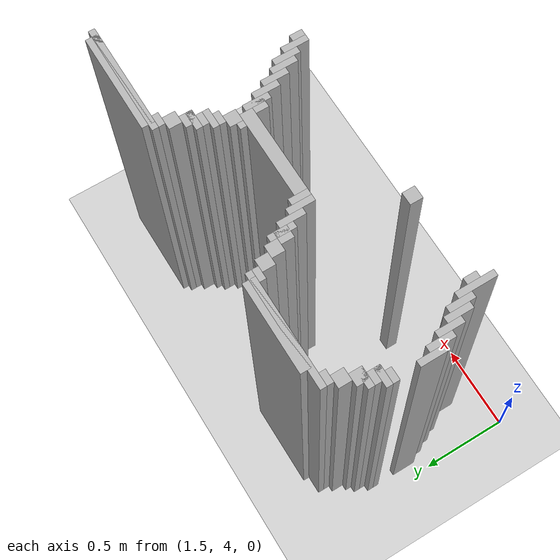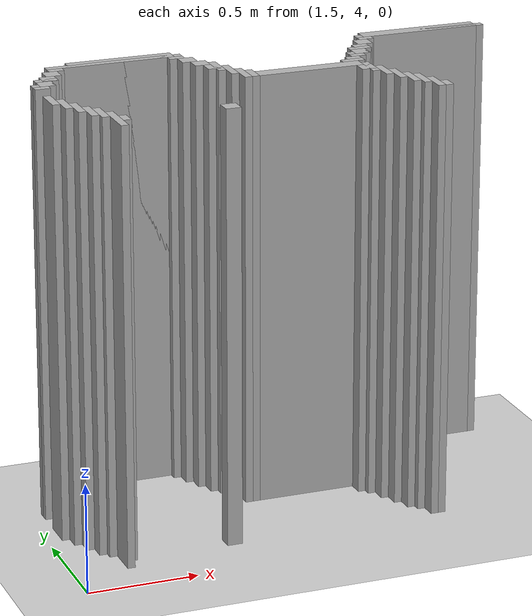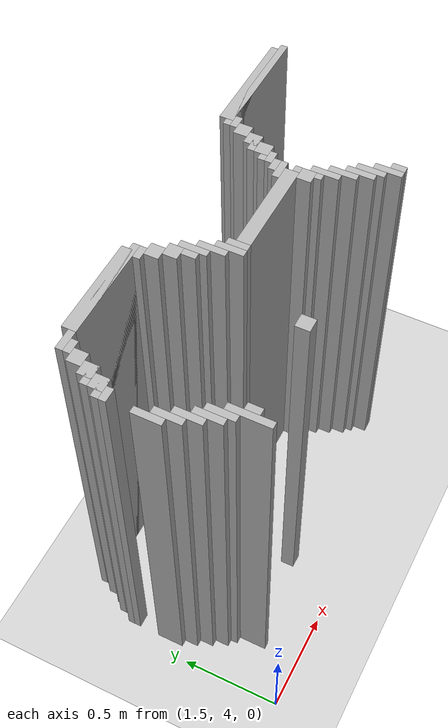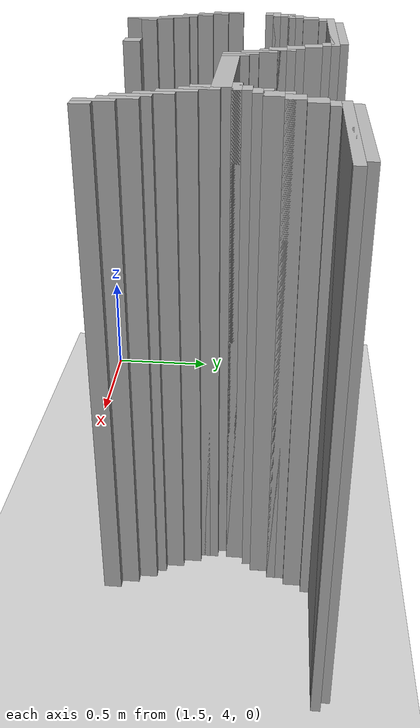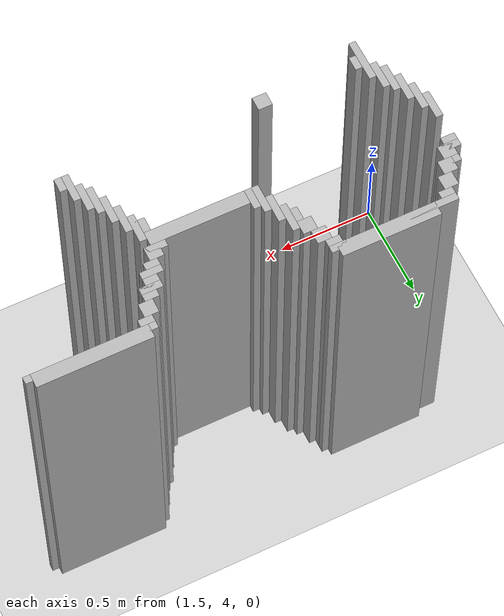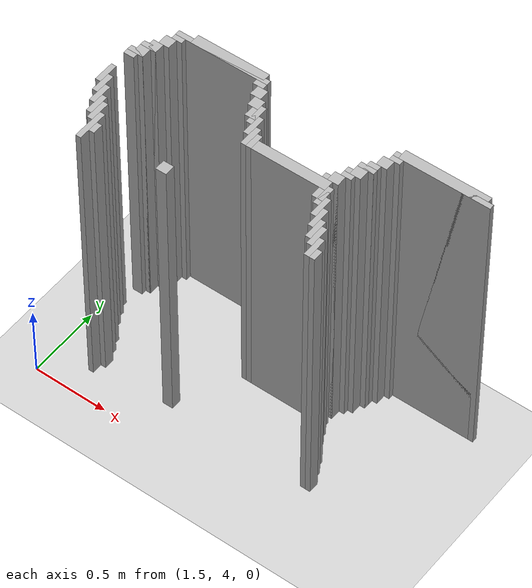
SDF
<sdf version="1.6">
 <world name="slam_world">
  <model name="ground_plane">
   <static>true</static>
   <link name="link">
    <collision name="collision">
     <geometry><plane><normal>0 0 1</normal><size>100 100</size></plane></geometry>
    </collision>
    <visual name="visual">
     <geometry><plane><normal>0 0 1</normal><size>100 100</size></plane></geometry>
     <material>
      <ambient>0.8 0.8 0.8 1</ambient>
      <diffuse>0.8 0.8 0.8 1</diffuse>
      <specular>0.8 0.8 0.8 1</specular>
     </material>
    </visual>
   </link>
  </model>
  <model name="wall_4001">
   <static>true</static>
   <pose>2.053364269141531 5.1160092807424595 1.0 0 0 0</pose>
   <link name="link">
    <collision name="collision">
     <geometry><box><size>0.4872389791183295 0.06960556844547564 2.0</size></box></geometry>
    </collision>
    <visual name="visual">
     <geometry><box><size>0.4872389791183295 0.06960556844547564 2.0</size></box></geometry>
     <material><ambient>0.5 0.5 0.5 1</ambient><diffuse>0.7 0.7 0.7 1</diffuse></material>
    </visual>
   </link>
  </model>
  <model name="wall_4002">
   <static>true</static>
   <pose>3.480278422273782 5.1160092807424595 1.0 0 0 0</pose>
   <link name="link">
    <collision name="collision">
     <geometry><box><size>0.5568445475638051 0.06960556844547564 2.0</size></box></geometry>
    </collision>
    <visual name="visual">
     <geometry><box><size>0.5568445475638051 0.06960556844547564 2.0</size></box></geometry>
     <material><ambient>0.5 0.5 0.5 1</ambient><diffuse>0.7 0.7 0.7 1</diffuse></material>
    </visual>
   </link>
  </model>
  <model name="wall_4011">
   <static>true</static>
   <pose>2.0185614849187936 5.09860788863109 1.0 0 0 0</pose>
   <link name="link">
    <collision name="collision">
     <geometry><box><size>0.6264501160092807 0.03480278422273782 2.0</size></box></geometry>
    </collision>
    <visual name="visual">
     <geometry><box><size>0.6264501160092807 0.03480278422273782 2.0</size></box></geometry>
     <material><ambient>0.5 0.5 0.5 1</ambient><diffuse>0.7 0.7 0.7 1</diffuse></material>
    </visual>
   </link>
  </model>
  <model name="wall_4012">
   <static>true</static>
   <pose>3.480278422273782 5.09860788863109 1.0 0 0 0</pose>
   <link name="link">
    <collision name="collision">
     <geometry><box><size>0.6264501160092807 0.03480278422273782 2.0</size></box></geometry>
    </collision>
    <visual name="visual">
     <geometry><box><size>0.6264501160092807 0.03480278422273782 2.0</size></box></geometry>
     <material><ambient>0.5 0.5 0.5 1</ambient><diffuse>0.7 0.7 0.7 1</diffuse></material>
    </visual>
   </link>
  </model>
  <model name="wall_4024">
   <static>true</static>
   <pose>1.740139211136891 5.0638051044083525 1.0 0 0 0</pose>
   <link name="link">
    <collision name="collision">
     <geometry><box><size>0.06960556844547564 0.03480278422273782 2.0</size></box></geometry>
    </collision>
    <visual name="visual">
     <geometry><box><size>0.06960556844547564 0.03480278422273782 2.0</size></box></geometry>
     <material><ambient>0.5 0.5 0.5 1</ambient><diffuse>0.7 0.7 0.7 1</diffuse></material>
    </visual>
   </link>
  </model>
  <model name="wall_4025">
   <static>true</static>
   <pose>2.296983758700696 5.0638051044083525 1.0 0 0 0</pose>
   <link name="link">
    <collision name="collision">
     <geometry><box><size>0.06960556844547564 0.03480278422273782 2.0</size></box></geometry>
    </collision>
    <visual name="visual">
     <geometry><box><size>0.06960556844547564 0.03480278422273782 2.0</size></box></geometry>
     <material><ambient>0.5 0.5 0.5 1</ambient><diffuse>0.7 0.7 0.7 1</diffuse></material>
    </visual>
   </link>
  </model>
  <model name="wall_4026">
   <static>true</static>
   <pose>3.201856148491879 5.0638051044083525 1.0 0 0 0</pose>
   <link name="link">
    <collision name="collision">
     <geometry><box><size>0.06960556844547564 0.03480278422273782 2.0</size></box></geometry>
    </collision>
    <visual name="visual">
     <geometry><box><size>0.06960556844547564 0.03480278422273782 2.0</size></box></geometry>
     <material><ambient>0.5 0.5 0.5 1</ambient><diffuse>0.7 0.7 0.7 1</diffuse></material>
    </visual>
   </link>
  </model>
  <model name="wall_4039">
   <static>true</static>
   <pose>1.705336426914153 5.0116009280742455 1.0 0 0 0</pose>
   <link name="link">
    <collision name="collision">
     <geometry><box><size>0.06960556844547564 0.06960556844547564 2.0</size></box></geometry>
    </collision>
    <visual name="visual">
     <geometry><box><size>0.06960556844547564 0.06960556844547564 2.0</size></box></geometry>
     <material><ambient>0.5 0.5 0.5 1</ambient><diffuse>0.7 0.7 0.7 1</diffuse></material>
    </visual>
   </link>
  </model>
  <model name="wall_4040">
   <static>true</static>
   <pose>2.331786542923434 5.0116009280742455 1.0 0 0 0</pose>
   <link name="link">
    <collision name="collision">
     <geometry><box><size>0.06960556844547564 0.06960556844547564 2.0</size></box></geometry>
    </collision>
    <visual name="visual">
     <geometry><box><size>0.06960556844547564 0.06960556844547564 2.0</size></box></geometry>
     <material><ambient>0.5 0.5 0.5 1</ambient><diffuse>0.7 0.7 0.7 1</diffuse></material>
    </visual>
   </link>
  </model>
  <model name="wall_4041">
   <static>true</static>
   <pose>3.167053364269141 5.0116009280742455 1.0 0 0 0</pose>
   <link name="link">
    <collision name="collision">
     <geometry><box><size>0.06960556844547564 0.06960556844547564 2.0</size></box></geometry>
    </collision>
    <visual name="visual">
     <geometry><box><size>0.06960556844547564 0.06960556844547564 2.0</size></box></geometry>
     <material><ambient>0.5 0.5 0.5 1</ambient><diffuse>0.7 0.7 0.7 1</diffuse></material>
    </visual>
   </link>
  </model>
  <model name="wall_4054">
   <static>true</static>
   <pose>1.6705336426914152 4.94199535962877 1.0 0 0 0</pose>
   <link name="link">
    <collision name="collision">
     <geometry><box><size>0.06960556844547564 0.06960556844547564 2.0</size></box></geometry>
    </collision>
    <visual name="visual">
     <geometry><box><size>0.06960556844547564 0.06960556844547564 2.0</size></box></geometry>
     <material><ambient>0.5 0.5 0.5 1</ambient><diffuse>0.7 0.7 0.7 1</diffuse></material>
    </visual>
   </link>
  </model>
  <model name="wall_4055">
   <static>true</static>
   <pose>2.3665893271461718 4.94199535962877 1.0 0 0 0</pose>
   <link name="link">
    <collision name="collision">
     <geometry><box><size>0.06960556844547564 0.06960556844547564 2.0</size></box></geometry>
    </collision>
    <visual name="visual">
     <geometry><box><size>0.06960556844547564 0.06960556844547564 2.0</size></box></geometry>
     <material><ambient>0.5 0.5 0.5 1</ambient><diffuse>0.7 0.7 0.7 1</diffuse></material>
    </visual>
   </link>
  </model>
  <model name="wall_4056">
   <static>true</static>
   <pose>3.1322505800464038 4.94199535962877 1.0 0 0 0</pose>
   <link name="link">
    <collision name="collision">
     <geometry><box><size>0.06960556844547564 0.06960556844547564 2.0</size></box></geometry>
    </collision>
    <visual name="visual">
     <geometry><box><size>0.06960556844547564 0.06960556844547564 2.0</size></box></geometry>
     <material><ambient>0.5 0.5 0.5 1</ambient><diffuse>0.7 0.7 0.7 1</diffuse></material>
    </visual>
   </link>
  </model>
  <model name="wall_4069">
   <static>true</static>
   <pose>1.6531322505800463 4.924593967517401 1.0 0 0 0</pose>
   <link name="link">
    <collision name="collision">
     <geometry><box><size>0.10440835266821345 0.03480278422273782 2.0</size></box></geometry>
    </collision>
    <visual name="visual">
     <geometry><box><size>0.10440835266821345 0.03480278422273782 2.0</size></box></geometry>
     <material><ambient>0.5 0.5 0.5 1</ambient><diffuse>0.7 0.7 0.7 1</diffuse></material>
    </visual>
   </link>
  </model>
  <model name="wall_4070">
   <static>true</static>
   <pose>2.4187935034802783 4.872389791183294 1.0 0 0 0</pose>
   <link name="link">
    <collision name="collision">
     <geometry><box><size>0.03480278422273782 0.13921113689095127 2.0</size></box></geometry>
    </collision>
    <visual name="visual">
     <geometry><box><size>0.03480278422273782 0.13921113689095127 2.0</size></box></geometry>
     <material><ambient>0.5 0.5 0.5 1</ambient><diffuse>0.7 0.7 0.7 1</diffuse></material>
    </visual>
   </link>
  </model>
  <model name="wall_4071">
   <static>true</static>
   <pose>3.1148491879350346 4.924593967517401 1.0 0 0 0</pose>
   <link name="link">
    <collision name="collision">
     <geometry><box><size>0.10440835266821345 0.03480278422273782 2.0</size></box></geometry>
    </collision>
    <visual name="visual">
     <geometry><box><size>0.10440835266821345 0.03480278422273782 2.0</size></box></geometry>
     <material><ambient>0.5 0.5 0.5 1</ambient><diffuse>0.7 0.7 0.7 1</diffuse></material>
    </visual>
   </link>
  </model>
  <model name="wall_4084">
   <static>true</static>
   <pose>1.6357308584686774 4.872389791183294 1.0 0 0 0</pose>
   <link name="link">
    <collision name="collision">
     <geometry><box><size>0.06960556844547564 0.06960556844547564 2.0</size></box></geometry>
    </collision>
    <visual name="visual">
     <geometry><box><size>0.06960556844547564 0.06960556844547564 2.0</size></box></geometry>
     <material><ambient>0.5 0.5 0.5 1</ambient><diffuse>0.7 0.7 0.7 1</diffuse></material>
    </visual>
   </link>
  </model>
  <model name="wall_4085">
   <static>true</static>
   <pose>2.4013921113689096 4.872389791183294 1.0 0 0 0</pose>
   <link name="link">
    <collision name="collision">
     <geometry><box><size>0.06960556844547564 0.06960556844547564 2.0</size></box></geometry>
    </collision>
    <visual name="visual">
     <geometry><box><size>0.06960556844547564 0.06960556844547564 2.0</size></box></geometry>
     <material><ambient>0.5 0.5 0.5 1</ambient><diffuse>0.7 0.7 0.7 1</diffuse></material>
    </visual>
   </link>
  </model>
  <model name="wall_4086">
   <static>true</static>
   <pose>3.097447795823666 4.872389791183294 1.0 0 0 0</pose>
   <link name="link">
    <collision name="collision">
     <geometry><box><size>0.06960556844547564 0.06960556844547564 2.0</size></box></geometry>
    </collision>
    <visual name="visual">
     <geometry><box><size>0.06960556844547564 0.06960556844547564 2.0</size></box></geometry>
     <material><ambient>0.5 0.5 0.5 1</ambient><diffuse>0.7 0.7 0.7 1</diffuse></material>
    </visual>
   </link>
  </model>
  <model name="wall_4097">
   <static>true</static>
   <pose>1.6183294663573085 4.854988399071925 1.0 0 0 0</pose>
   <link name="link">
    <collision name="collision">
     <geometry><box><size>0.10440835266821345 0.03480278422273782 2.0</size></box></geometry>
    </collision>
    <visual name="visual">
     <geometry><box><size>0.10440835266821345 0.03480278422273782 2.0</size></box></geometry>
     <material><ambient>0.5 0.5 0.5 1</ambient><diffuse>0.7 0.7 0.7 1</diffuse></material>
    </visual>
   </link>
  </model>
  <model name="wall_4098">
   <static>true</static>
   <pose>2.453596287703016 4.802784222737819 1.0 0 0 0</pose>
   <link name="link">
    <collision name="collision">
     <geometry><box><size>0.03480278422273782 0.13921113689095127 2.0</size></box></geometry>
    </collision>
    <visual name="visual">
     <geometry><box><size>0.03480278422273782 0.13921113689095127 2.0</size></box></geometry>
     <material><ambient>0.5 0.5 0.5 1</ambient><diffuse>0.7 0.7 0.7 1</diffuse></material>
    </visual>
   </link>
  </model>
  <model name="wall_4099">
   <static>true</static>
   <pose>3.0800464037122968 4.854988399071925 1.0 0 0 0</pose>
   <link name="link">
    <collision name="collision">
     <geometry><box><size>0.10440835266821345 0.03480278422273782 2.0</size></box></geometry>
    </collision>
    <visual name="visual">
     <geometry><box><size>0.10440835266821345 0.03480278422273782 2.0</size></box></geometry>
     <material><ambient>0.5 0.5 0.5 1</ambient><diffuse>0.7 0.7 0.7 1</diffuse></material>
    </visual>
   </link>
  </model>
  <model name="wall_4111">
   <static>true</static>
   <pose>1.6009280742459395 4.820185614849188 1.0 0 0 0</pose>
   <link name="link">
    <collision name="collision">
     <geometry><box><size>0.06960556844547564 0.03480278422273782 2.0</size></box></geometry>
    </collision>
    <visual name="visual">
     <geometry><box><size>0.06960556844547564 0.03480278422273782 2.0</size></box></geometry>
     <material><ambient>0.5 0.5 0.5 1</ambient><diffuse>0.7 0.7 0.7 1</diffuse></material>
    </visual>
   </link>
  </model>
  <model name="wall_4112">
   <static>true</static>
   <pose>3.062645011600928 4.820185614849188 1.0 0 0 0</pose>
   <link name="link">
    <collision name="collision">
     <geometry><box><size>0.06960556844547564 0.03480278422273782 2.0</size></box></geometry>
    </collision>
    <visual name="visual">
     <geometry><box><size>0.06960556844547564 0.03480278422273782 2.0</size></box></geometry>
     <material><ambient>0.5 0.5 0.5 1</ambient><diffuse>0.7 0.7 0.7 1</diffuse></material>
    </visual>
   </link>
  </model>
  <model name="wall_4121">
   <static>true</static>
   <pose>2.488399071925754 4.7331786542923435 1.0 0 0 0</pose>
   <link name="link">
    <collision name="collision">
     <geometry><box><size>0.03480278422273782 0.13921113689095127 2.0</size></box></geometry>
    </collision>
    <visual name="visual">
     <geometry><box><size>0.03480278422273782 0.13921113689095127 2.0</size></box></geometry>
     <material><ambient>0.5 0.5 0.5 1</ambient><diffuse>0.7 0.7 0.7 1</diffuse></material>
    </visual>
   </link>
  </model>
  <model name="wall_4122">
   <static>true</static>
   <pose>3.02784222737819 4.767981438515081 1.0 0 0 0</pose>
   <link name="link">
    <collision name="collision">
     <geometry><box><size>0.06960556844547564 0.06960556844547564 2.0</size></box></geometry>
    </collision>
    <visual name="visual">
     <geometry><box><size>0.06960556844547564 0.06960556844547564 2.0</size></box></geometry>
     <material><ambient>0.5 0.5 0.5 1</ambient><diffuse>0.7 0.7 0.7 1</diffuse></material>
    </visual>
   </link>
  </model>
  <model name="wall_4135">
   <static>true</static>
   <pose>2.523201856148492 4.715777262180974 1.0 0 0 0</pose>
   <link name="link">
    <collision name="collision">
     <geometry><box><size>0.03480278422273782 0.10440835266821345 2.0</size></box></geometry>
    </collision>
    <visual name="visual">
     <geometry><box><size>0.03480278422273782 0.10440835266821345 2.0</size></box></geometry>
     <material><ambient>0.5 0.5 0.5 1</ambient><diffuse>0.7 0.7 0.7 1</diffuse></material>
    </visual>
   </link>
  </model>
  <model name="wall_4136">
   <static>true</static>
   <pose>3.010440835266821 4.750580046403712 1.0 0 0 0</pose>
   <link name="link">
    <collision name="collision">
     <geometry><box><size>0.10440835266821345 0.03480278422273782 2.0</size></box></geometry>
    </collision>
    <visual name="visual">
     <geometry><box><size>0.10440835266821345 0.03480278422273782 2.0</size></box></geometry>
     <material><ambient>0.5 0.5 0.5 1</ambient><diffuse>0.7 0.7 0.7 1</diffuse></material>
    </visual>
   </link>
  </model>
  <model name="wall_4149">
   <static>true</static>
   <pose>2.784222737819025 4.698375870069605 1.0 0 0 0</pose>
   <link name="link">
    <collision name="collision">
     <geometry><box><size>0.4872389791183295 0.06960556844547564 2.0</size></box></geometry>
    </collision>
    <visual name="visual">
     <geometry><box><size>0.4872389791183295 0.06960556844547564 2.0</size></box></geometry>
     <material><ambient>0.5 0.5 0.5 1</ambient><diffuse>0.7 0.7 0.7 1</diffuse></material>
    </visual>
   </link>
  </model>
  <model name="wall_4161">
   <static>true</static>
   <pose>1.5835266821345706 4.6287703016241295 1.0 0 0 0</pose>
   <link name="link">
    <collision name="collision">
     <geometry><box><size>0.03480278422273782 0.13921113689095127 2.0</size></box></geometry>
    </collision>
    <visual name="visual">
     <geometry><box><size>0.03480278422273782 0.13921113689095127 2.0</size></box></geometry>
     <material><ambient>0.5 0.5 0.5 1</ambient><diffuse>0.7 0.7 0.7 1</diffuse></material>
    </visual>
   </link>
  </model>
  <model name="wall_4162">
   <static>true</static>
   <pose>3.045243619489559 4.6287703016241295 1.0 0 0 0</pose>
   <link name="link">
    <collision name="collision">
     <geometry><box><size>0.03480278422273782 0.13921113689095127 2.0</size></box></geometry>
    </collision>
    <visual name="visual">
     <geometry><box><size>0.03480278422273782 0.13921113689095127 2.0</size></box></geometry>
     <material><ambient>0.5 0.5 0.5 1</ambient><diffuse>0.7 0.7 0.7 1</diffuse></material>
    </visual>
   </link>
  </model>
  <model name="wall_4176">
   <static>true</static>
   <pose>3.02784222737819 4.6287703016241295 1.0 0 0 0</pose>
   <link name="link">
    <collision name="collision">
     <geometry><box><size>0.06960556844547564 0.06960556844547564 2.0</size></box></geometry>
    </collision>
    <visual name="visual">
     <geometry><box><size>0.06960556844547564 0.06960556844547564 2.0</size></box></geometry>
     <material><ambient>0.5 0.5 0.5 1</ambient><diffuse>0.7 0.7 0.7 1</diffuse></material>
    </visual>
   </link>
  </model>
  <model name="wall_4190">
   <static>true</static>
   <pose>1.6183294663573085 4.559164733178654 1.0 0 0 0</pose>
   <link name="link">
    <collision name="collision">
     <geometry><box><size>0.03480278422273782 0.13921113689095127 2.0</size></box></geometry>
    </collision>
    <visual name="visual">
     <geometry><box><size>0.03480278422273782 0.13921113689095127 2.0</size></box></geometry>
     <material><ambient>0.5 0.5 0.5 1</ambient><diffuse>0.7 0.7 0.7 1</diffuse></material>
    </visual>
   </link>
  </model>
  <model name="wall_4191">
   <static>true</static>
   <pose>3.0800464037122968 4.559164733178654 1.0 0 0 0</pose>
   <link name="link">
    <collision name="collision">
     <geometry><box><size>0.03480278422273782 0.13921113689095127 2.0</size></box></geometry>
    </collision>
    <visual name="visual">
     <geometry><box><size>0.03480278422273782 0.13921113689095127 2.0</size></box></geometry>
     <material><ambient>0.5 0.5 0.5 1</ambient><diffuse>0.7 0.7 0.7 1</diffuse></material>
    </visual>
   </link>
  </model>
  <model name="wall_4212">
   <static>true</static>
   <pose>1.6531322505800463 4.489559164733178 1.0 0 0 0</pose>
   <link name="link">
    <collision name="collision">
     <geometry><box><size>0.03480278422273782 0.13921113689095127 2.0</size></box></geometry>
    </collision>
    <visual name="visual">
     <geometry><box><size>0.03480278422273782 0.13921113689095127 2.0</size></box></geometry>
     <material><ambient>0.5 0.5 0.5 1</ambient><diffuse>0.7 0.7 0.7 1</diffuse></material>
    </visual>
   </link>
  </model>
  <model name="wall_4213">
   <static>true</static>
   <pose>3.1148491879350346 4.489559164733178 1.0 0 0 0</pose>
   <link name="link">
    <collision name="collision">
     <geometry><box><size>0.03480278422273782 0.13921113689095127 2.0</size></box></geometry>
    </collision>
    <visual name="visual">
     <geometry><box><size>0.03480278422273782 0.13921113689095127 2.0</size></box></geometry>
     <material><ambient>0.5 0.5 0.5 1</ambient><diffuse>0.7 0.7 0.7 1</diffuse></material>
    </visual>
   </link>
  </model>
  <model name="wall_4227">
   <static>true</static>
   <pose>1.6879350348027842 4.419953596287703 1.0 0 0 0</pose>
   <link name="link">
    <collision name="collision">
     <geometry><box><size>0.03480278422273782 0.13921113689095127 2.0</size></box></geometry>
    </collision>
    <visual name="visual">
     <geometry><box><size>0.03480278422273782 0.13921113689095127 2.0</size></box></geometry>
     <material><ambient>0.5 0.5 0.5 1</ambient><diffuse>0.7 0.7 0.7 1</diffuse></material>
    </visual>
   </link>
  </model>
  <model name="wall_4228">
   <static>true</static>
   <pose>3.1496519721577725 4.419953596287703 1.0 0 0 0</pose>
   <link name="link">
    <collision name="collision">
     <geometry><box><size>0.03480278422273782 0.13921113689095127 2.0</size></box></geometry>
    </collision>
    <visual name="visual">
     <geometry><box><size>0.03480278422273782 0.13921113689095127 2.0</size></box></geometry>
     <material><ambient>0.5 0.5 0.5 1</ambient><diffuse>0.7 0.7 0.7 1</diffuse></material>
    </visual>
   </link>
  </model>
  <model name="wall_4242">
   <static>true</static>
   <pose>1.722737819025522 4.385150812064965 1.0 0 0 0</pose>
   <link name="link">
    <collision name="collision">
     <geometry><box><size>0.03480278422273782 0.13921113689095127 2.0</size></box></geometry>
    </collision>
    <visual name="visual">
     <geometry><box><size>0.03480278422273782 0.13921113689095127 2.0</size></box></geometry>
     <material><ambient>0.5 0.5 0.5 1</ambient><diffuse>0.7 0.7 0.7 1</diffuse></material>
    </visual>
   </link>
  </model>
  <model name="wall_4243">
   <static>true</static>
   <pose>3.1844547563805103 4.385150812064965 1.0 0 0 0</pose>
   <link name="link">
    <collision name="collision">
     <geometry><box><size>0.03480278422273782 0.13921113689095127 2.0</size></box></geometry>
    </collision>
    <visual name="visual">
     <geometry><box><size>0.03480278422273782 0.13921113689095127 2.0</size></box></geometry>
     <material><ambient>0.5 0.5 0.5 1</ambient><diffuse>0.7 0.7 0.7 1</diffuse></material>
    </visual>
   </link>
  </model>
  <model name="wall_4263">
   <static>true</static>
   <pose>1.75754060324826 4.280742459396752 1.0 0 0 0</pose>
   <link name="link">
    <collision name="collision">
     <geometry><box><size>0.03480278422273782 0.2088167053364269 2.0</size></box></geometry>
    </collision>
    <visual name="visual">
     <geometry><box><size>0.03480278422273782 0.2088167053364269 2.0</size></box></geometry>
     <material><ambient>0.5 0.5 0.5 1</ambient><diffuse>0.7 0.7 0.7 1</diffuse></material>
    </visual>
   </link>
  </model>
  <model name="wall_4264">
   <static>true</static>
   <pose>3.219257540603248 4.315545243619489 1.0 0 0 0</pose>
   <link name="link">
    <collision name="collision">
     <geometry><box><size>0.03480278422273782 0.13921113689095127 2.0</size></box></geometry>
    </collision>
    <visual name="visual">
     <geometry><box><size>0.03480278422273782 0.13921113689095127 2.0</size></box></geometry>
     <material><ambient>0.5 0.5 0.5 1</ambient><diffuse>0.7 0.7 0.7 1</diffuse></material>
    </visual>
   </link>
  </model>
  <model name="wall_4284">
   <static>true</static>
   <pose>1.7923433874709975 4.280742459396752 1.0 0 0 0</pose>
   <link name="link">
    <collision name="collision">
     <geometry><box><size>0.03480278422273782 0.06960556844547564 2.0</size></box></geometry>
    </collision>
    <visual name="visual">
     <geometry><box><size>0.03480278422273782 0.06960556844547564 2.0</size></box></geometry>
     <material><ambient>0.5 0.5 0.5 1</ambient><diffuse>0.7 0.7 0.7 1</diffuse></material>
    </visual>
   </link>
  </model>
  <model name="wall_4285">
   <static>true</static>
   <pose>2.262180974477958 4.280742459396752 1.0 0 0 0</pose>
   <link name="link">
    <collision name="collision">
     <geometry><box><size>0.06960556844547564 0.06960556844547564 2.0</size></box></geometry>
    </collision>
    <visual name="visual">
     <geometry><box><size>0.06960556844547564 0.06960556844547564 2.0</size></box></geometry>
     <material><ambient>0.5 0.5 0.5 1</ambient><diffuse>0.7 0.7 0.7 1</diffuse></material>
    </visual>
   </link>
  </model>
  <model name="wall_4286">
   <static>true</static>
   <pose>3.254060324825986 4.280742459396752 1.0 0 0 0</pose>
   <link name="link">
    <collision name="collision">
     <geometry><box><size>0.03480278422273782 0.06960556844547564 2.0</size></box></geometry>
    </collision>
    <visual name="visual">
     <geometry><box><size>0.03480278422273782 0.06960556844547564 2.0</size></box></geometry>
     <material><ambient>0.5 0.5 0.5 1</ambient><diffuse>0.7 0.7 0.7 1</diffuse></material>
    </visual>
   </link>
  </model>
 </world>
</sdf>
